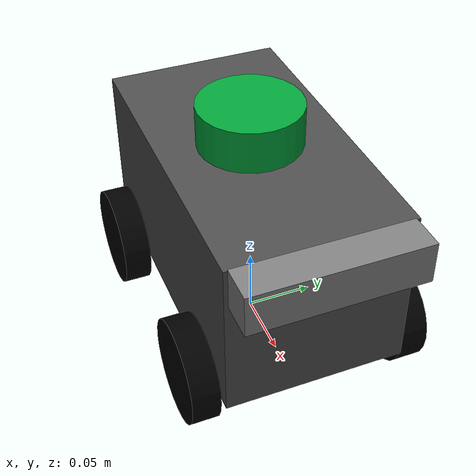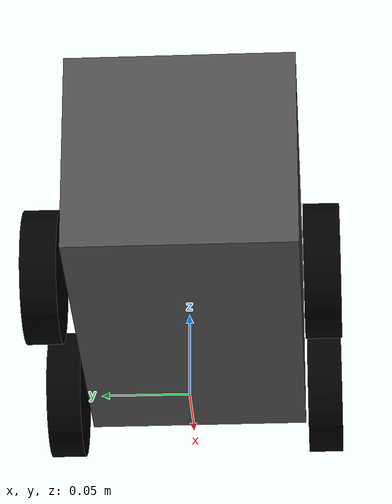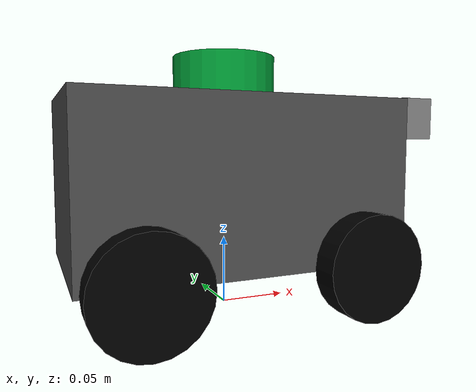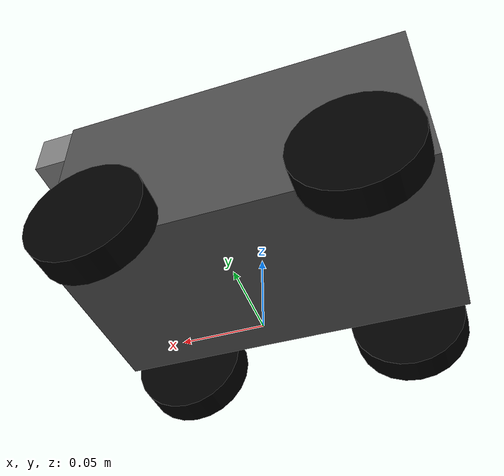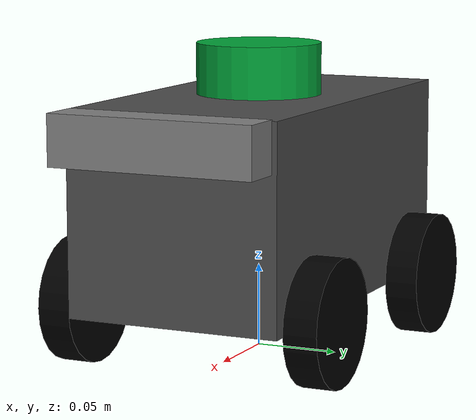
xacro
<?xml version="1.0"?>
<robot name="my_robot" xmlns:xacro="http://www.ros.org/wiki/xacro">

    <xacro:include filename="$(find cobraflex)/urdf/common_properties.xacro" />
    <xacro:include filename="$(find cobraflex)/urdf/mobile_base.xacro" />
    <xacro:include filename="$(find cobraflex)/urdf/mobile_base_gazebo.xacro" />

    <!-- Sensors -->
    <xacro:include filename="$(find cobraflex)/urdf/rplidar_a2.urdf.xacro"/>
    <xacro:include filename="$(find cobraflex)/urdf/camera.xacro" />
    <xacro:include filename="$(find cobraflex)/urdf/imu.urdf.xacro" />

</robot>

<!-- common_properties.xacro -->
<robot xmlns:xacro="http://www.ros.org/wiki/xacro">

    <material name="blue">
        <color rgba="0 0 0.5 1" />
    </material>

    <material name="grey">
        <color rgba="0.5 0.5 0.5 1" />
    </material>

    <xacro:macro name="box_inertia" params="m x y z o_xyz o_rpy">
        <inertial>
            <mass value="${m}" />
            <origin xyz="${o_xyz}" rpy="${o_rpy}" />
            <inertia ixx="${(m/12) * (y*y + z*z)}" ixy="0" ixz="0"
                     iyy="${(m/12) * (x*x + z*z)}" iyz="0"
                     izz="${(m/12) * (x*x + y*y)}" />
        </inertial>
    </xacro:macro>

    <xacro:macro name="cylinder_inertia" params="m r l o_xyz o_rpy">
        <inertial>
            <mass value="${m}" />
            <origin xyz="${o_xyz}" rpy="${o_rpy}" />
            <inertia ixx="${(m/12) * (3*r*r + l*l)}" ixy="0" ixz="0"
                     iyy="${(m/12) * (3*r*r + l*l)}" iyz="0"
                     izz="${(m/2) * (r*r)}" />
        </inertial>
    </xacro:macro>

</robot>

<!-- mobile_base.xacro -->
<robot xmlns:xacro="http://www.ros.org/wiki/xacro">

  <!-- ================= ROBOT PARAMETERS ================= -->
  <xacro:property name="base_length" value="0.235"/>
  <xacro:property name="base_width"  value="0.13"/>
  <xacro:property name="base_height" value="0.12"/>

  <xacro:property name="wheel_radius" value="0.03725"/>
  <xacro:property name="wheel_length" value="0.02"/>

  <!-- ================= BASE ================= -->
  <link name="base_footprint"/>

  <link name="base_link">

    <inertial>
      <origin xyz="0 0 0.09424" rpy="0 0 0"/>
      <mass value="3"/>
      <inertia ixx="0.00783" ixy="0.0" ixz="0.0"
               iyy="0.01741" iyz="0.0"
               izz="0.01803"/>
    </inertial>

    <visual>
      <origin xyz="0 0 0.09424" rpy="0 0 0"/>
      <geometry>
        <box size="${base_length} ${base_width} ${base_height}"/>
      </geometry>
      <material name="chassis_grey">
        <color rgba="0.3 0.3 0.3 1.0"/>
      </material>
    </visual>

    <collision>
      <origin xyz="0 0 0.09424" rpy="0 0 0"/>
      <geometry>
        <box size="${base_length} ${base_width} ${base_height}"/>
      </geometry>
    </collision>
  </link>

  <joint name="base_footprint_to_base_link" type="fixed">
    <parent link="base_footprint"/>
    <child link="base_link"/>
    <origin xyz="0 0 0" rpy="0 0 0"/>
  </joint>

 <!-- ================= WHEELS MACRO ================= -->
  <xacro:macro name="wheel" params="name x y">
    <link name="${name}_link">
      <visual>
        <geometry>
          <cylinder radius="${wheel_radius}" length="${wheel_length}"/>
        </geometry>

        <material name="wheel_black">
          <color rgba="0.0 0.0 0.0 1.0"/>
        </material>

        <origin xyz="0 0 0" rpy="${pi/2} 0 0"/>
      </visual>

      <inertial>
        <origin xyz="0 0 0" rpy="0 0 0"/>
        <mass value="0.1"/>
        <inertia ixx="0.0001" ixy="0.0" ixz="0.0"
                 iyy="0.0001" iyz="0.0"
                 izz="0.0001"/>
      </inertial>

      <collision>
        <origin xyz="0 0 0" rpy="${pi/2} 0 0"/>
        <geometry>
          <cylinder radius="${wheel_radius}" length="${wheel_length}"/>
        </geometry>
      </collision>

    </link>

    <joint name="${name}_joint" type="continuous">
      <parent link="base_link"/>
      <child link="${name}_link"/>
      <origin xyz="${x} ${y} ${wheel_radius}" rpy= "0 0 0"/>
      <axis xyz="0 1 0"/>
    </joint>
  </xacro:macro>

  <!-- ================= WHEELS ================= -->
  <xacro:wheel name="wheel_fl" x="0.077" y="0.077"/>
  <xacro:wheel name="wheel_fr" x="0.077" y="-0.077"/>
  <xacro:wheel name="wheel_rl" x="-0.077" y="0.077"/>
  <xacro:wheel name="wheel_rr" x="-0.077" y="-0.077"/>

</robot>

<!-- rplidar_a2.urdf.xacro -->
<robot xmlns:xacro="http://www.ros.org/wiki/xacro">

    <link name="lidar_link">
      <visual>
        <origin xyz="0 0 0" rpy="0 0 0"/>
        <geometry>
          <cylinder radius="0.0375" length="0.05"/>
        </geometry>
        <material name="green">
            <color rgba="0.003 0.639 0.223 1.0"/>
        </material>
      </visual>
      <collision>
        <origin xyz="0 0 0" rpy="0 0 0"/>
        <geometry>
          <cylinder radius="0.0375" length="0.05"/>
        </geometry>
      </collision>

      <inertial>
        <origin xyz="0 0 0" rpy="0 0 0"/>
        <mass value="0.1"/>
        <inertia ixx="${(2/5) * 0.1 * (0.0375 * 0.0375)}" ixy="0" ixz="0"
                 iyy="${(2/5) * 0.1 * (0.0375 * 0.0375)}" iyz="0"
                 izz="${(2/5) * 0.1 * (0.0375 * 0.0375)}" />
      </inertial>
    </link>

    <joint name="lidar_to_base_link" type="fixed">
      <parent link="base_link"/>
      <child link="lidar_link"/>
      <origin xyz="0 0 0.16" rpy="0 0 0"/>
    </joint>

    <gazebo reference="lidar_link">
      <sensor name="gpu_lidar" type="gpu_lidar">
        <topic>scan</topic>
        <gz_frame_id>lidar_link</gz_frame_id>
        <update_rate>10</update_rate>
        <always_on>true</always_on>
        <visualize>true</visualize>
        <ray>
          <scan>
            <horizontal>
              <samples>720</samples>
              <resolution>0.01</resolution>
              <min_angle>-3.1416</min_angle>
              <max_angle>3.1416</max_angle>
            </horizontal>
            <vertical>
              <samples>1</samples>
              <resolution>1</resolution>
              <min_angle>0.0</min_angle>
              <max_angle>0.0</max_angle>
            </vertical>
          </scan>
          <range>
            <min>0.2</min>
            <max>20.0</max>
            <resolution>0.01</resolution>
          </range>
        </ray>
      </sensor>
    </gazebo>

    <link name="my_robot/base_footprint/gpu_lidar"/>

    <joint name="lidar_joint" type="fixed">
        <parent link="lidar_link" />
        <child link="my_robot/base_footprint/gpu_lidar" />
        <origin xyz="0 0 0" rpy="0 0 0" />
    </joint>

</robot>

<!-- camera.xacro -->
<robot xmlns:xacro="http://www.ros.org/wiki/xacro">

    <!-- ================= CAMERA PARAMETERS ================= -->
    <xacro:property name="camera_length" value="0.026" />
    <xacro:property name="camera_width" value="0.124" />
    <xacro:property name="camera_height" value="0.03" />

    <link name="camera_link">
        <visual>
            <geometry>
                <box size="${camera_length} ${camera_width} ${camera_height}" />
            </geometry>
            <material name="grey" />
        </visual>
        <collision>
            <geometry>
                <box size="${camera_length} ${camera_width} ${camera_height}" />
            </geometry>
        </collision>
        <xacro:box_inertia m="0.1" x="${camera_length}" y="${camera_width}" z="${camera_height}"
                           o_xyz="0 0 0" o_rpy="0 0 0" />
    </link>

    <joint name="base_camera_joint" type="fixed">
        <parent link="base_link" />
        <child link="camera_link" />
        <origin xyz="0.13 0.0 0.14" rpy="0 0 0" />
    </joint>

    <link name="camera_link_optical" />

    <joint name="camera_optical_joint" type="fixed">
        <origin xyz="0 0 0" rpy="${-pi/2} 0 ${-pi/2}"/>
        <parent link="camera_link"/>
        <child link="camera_link_optical"/>
    </joint>

    <gazebo reference="camera_link">
        <sensor name="camera" type="camera">
            <camera>
                <horizontal_fov>1.3962634</horizontal_fov>
                <image>
                    <width>640</width>
                    <height>480</height>
                    <format>R8G8B8</format>
                </image>
                <clip>
                    <near>0.1</near>
                    <far>15</far>
                </clip>
                <noise>
                    <type>gaussian</type>
                    <mean>0.0</mean>
                    <stddev>0.007</stddev>
                </noise>
                <optical_frame_id>camera_link_optical</optical_frame_id>
                <camera_info_topic>camera/camera_info</camera_info_topic>
            </camera>
            <always_on>true</always_on>
            <update_rate>30</update_rate>
            <visualize>true</visualize>
            <topic>camera/image_raw</topic>
        </sensor>
    </gazebo>

</robot>

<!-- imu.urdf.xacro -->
<robot xmlns:xacro="http://www.ros.org/wiki/xacro">

    <link name="imu_link">
        <inertial>
        <origin xyz="-0.00552433659106688 0.000168210391520346 0.000514000497342681" rpy="0 0 0" />
        <mass value="0.000528415362211671" />
        <inertia ixx="1.46176048428261E-08" ixy="1.40015117949421E-10" ixz="-1.99633872937403E-12"
                iyy="8.59662482954888E-09" iyz="7.52375112767959E-12"
                izz="2.30279421279312E-08" />
        </inertial>
        <visual>
        <origin xyz="0 0 0" rpy="0 0 0" />
        <geometry>
            <box size="0.01 0.01 0.01" />
        </geometry>
        <material name="">
            <color rgba="0.792156862745098 0.819607843137255 0.933333333333333 1" />
        </material>
        </visual>
        <collision>
        <origin xyz="0 0 0" rpy="0 0 0" />
        <geometry>
            <box size="0.01 0.01 0.01" />
        </geometry>
        </collision>
    </link>

    <joint name="imu_joint" type="fixed">
        <parent link="base_link" />
        <child link="imu_link" />
        <origin xyz="0.13 0.0 0.14" rpy="0 0 0" />
    </joint>

    <!-- ================= IMU SENSOR ================= -->
    <gazebo reference="imu_link">
        <sensor name="imu_sensor" type="imu">
            <always_on>true</always_on>
            <visualize>true</visualize>
            <update_rate>50</update_rate>
            <gz_frame_id>imu_link</gz_frame_id>
            <topic>imu</topic>
            <imu>
                <angular_velocity>
                    <x>
                    <noise type="gaussian">
                        <mean>0.0</mean>
                        <stddev>2e-4</stddev>
                    </noise>
                    </x>
                    <y>
                    <noise type="gaussian">
                        <mean>0.0</mean>
                        <stddev>2e-4</stddev>
                    </noise>
                    </y>
                    <z>
                    <noise type="gaussian">
                        <mean>0.0</mean>
                        <stddev>2e-4</stddev>
                    </noise>
                    </z>
                </angular_velocity>
                <linear_acceleration>
                    <x>
                    <noise type="gaussian">
                        <mean>0.0</mean>
                        <stddev>1.7e-2</stddev>
                    </noise>
                    </x>
                    <y>
                    <noise type="gaussian">
                        <mean>0.0</mean>
                        <stddev>1.7e-2</stddev>
                    </noise>
                    </y>
                    <z>
                    <noise type="gaussian">
                        <mean>0.0</mean>
                        <stddev>1.7e-2</stddev>
                    </noise>
                    </z>
                </linear_acceleration>
            </imu>
        </sensor>
    </gazebo>

</robot>
